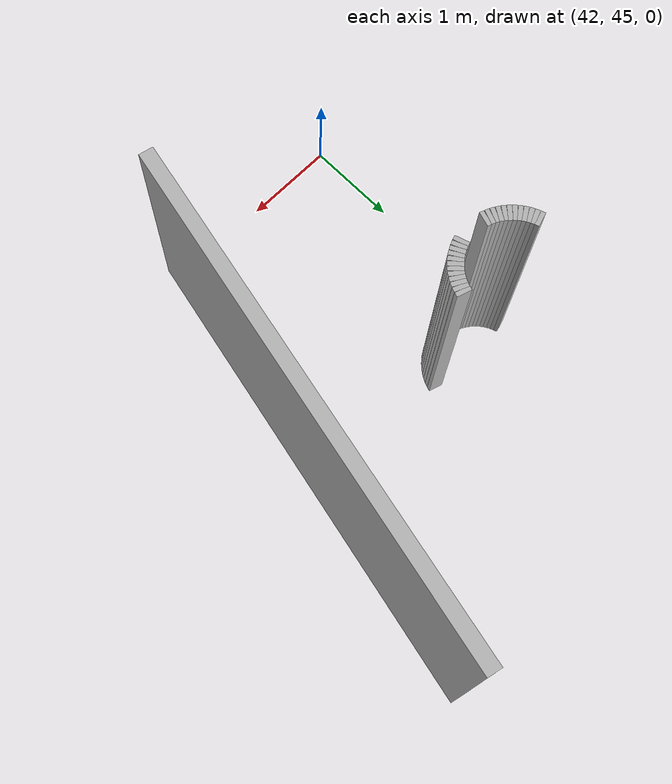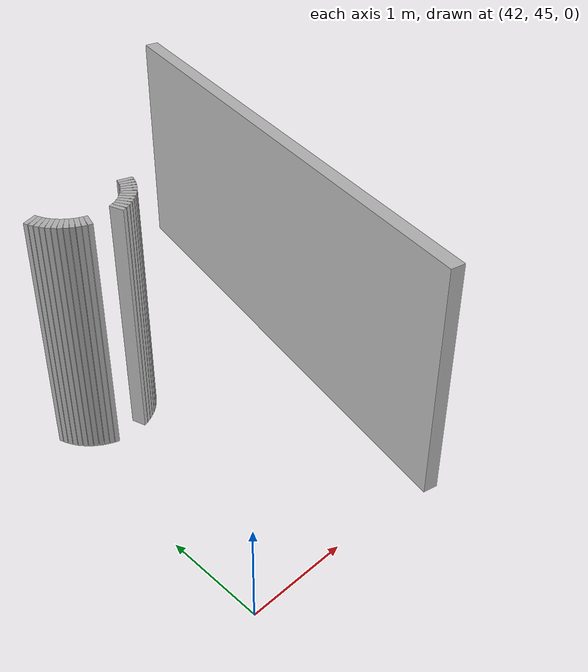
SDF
<sdf version="1.6">
 <model name="sps_2603">
  <static>1</static>
  <allow_auto_disable>0</allow_auto_disable>
  <link name="Wall710">
   <collision name="collision"><geometry><box><size>0.0453057 0.15 2.5</size></box></geometry></collision>
   <visual name="visual">
    <geometry><box><size>0.0453057 0.15 2.5</size></box></geometry>
    <transparency>0.0</transparency>
   </visual>
   <pose>43.0845 47.7989 1.25 0 0 -1.87593</pose>
  </link>
  <link name="Wall711">
   <collision name="collision"><geometry><box><size>0.0454525 0.15 2.5</size></box></geometry></collision>
   <visual name="visual">
    <geometry><box><size>0.0454525 0.15 2.5</size></box></geometry>
    <transparency>0.0</transparency>
   </visual>
   <pose>43.069 47.7563 1.25 0 0 -1.96352</pose>
  </link>
  <link name="Wall712">
   <collision name="collision"><geometry><box><size>0.0453724 0.15 2.5</size></box></geometry></collision>
   <visual name="visual">
    <geometry><box><size>0.0453724 0.15 2.5</size></box></geometry>
    <transparency>0.0</transparency>
   </visual>
   <pose>43.0498 47.7152 1.25 0 0 -2.05189</pose>
  </link>
  <link name="Wall713">
   <collision name="collision"><geometry><box><size>0.045342 0.15 2.5</size></box></geometry></collision>
   <visual name="visual">
    <geometry><box><size>0.045342 0.15 2.5</size></box></geometry>
    <transparency>0.0</transparency>
   </visual>
   <pose>43.0271 47.676 1.25 0 0 -2.13938</pose>
  </link>
  <link name="Wall714">
   <collision name="collision"><geometry><box><size>0.0453637 0.15 2.5</size></box></geometry></collision>
   <visual name="visual">
    <geometry><box><size>0.0453637 0.15 2.5</size></box></geometry>
    <transparency>0.0</transparency>
   </visual>
   <pose>43.0011 47.6389 1.25 0 0 -2.22452</pose>
  </link>
  <link name="Wall715">
   <collision name="collision"><geometry><box><size>0.0453148 0.15 2.5</size></box></geometry></collision>
   <visual name="visual">
    <geometry><box><size>0.0453148 0.15 2.5</size></box></geometry>
    <transparency>0.0</transparency>
   </visual>
   <pose>42.9719 47.6042 1.25 0 0 -2.31332</pose>
  </link>
  <link name="Wall716">
   <collision name="collision"><geometry><box><size>0.0453974 0.15 2.5</size></box></geometry></collision>
   <visual name="visual">
    <geometry><box><size>0.0453974 0.15 2.5</size></box></geometry>
    <transparency>0.0</transparency>
   </visual>
   <pose>42.9399 47.5721 1.25 0 0 -2.39709</pose>
  </link>
  <link name="Wall717">
   <collision name="collision"><geometry><box><size>0.0454008 0.15 2.5</size></box></geometry></collision>
   <visual name="visual">
    <geometry><box><size>0.0454008 0.15 2.5</size></box></geometry>
    <transparency>0.0</transparency>
   </visual>
   <pose>42.9052 47.5429 1.25 0 0 -2.4868</pose>
  </link>
  <link name="Wall718">
   <collision name="collision"><geometry><box><size>0.0453659 0.15 2.5</size></box></geometry></collision>
   <visual name="visual">
    <geometry><box><size>0.0453659 0.15 2.5</size></box></geometry>
    <transparency>0.0</transparency>
   </visual>
   <pose>42.868 47.517 1.25 0 0 -2.57971</pose>
  </link>
  <link name="Wall719">
   <collision name="collision"><geometry><box><size>0.0453183 0.15 2.5</size></box></geometry></collision>
   <visual name="visual">
    <geometry><box><size>0.0453183 0.15 2.5</size></box></geometry>
    <transparency>0.0</transparency>
   </visual>
   <pose>42.8288 47.4944 1.25 0 0 -2.65987</pose>
  </link>
  <link name="Wall720">
   <collision name="collision"><geometry><box><size>0.0454525 0.15 2.5</size></box></geometry></collision>
   <visual name="visual">
    <geometry><box><size>0.0454525 0.15 2.5</size></box></geometry>
    <transparency>0.0</transparency>
   </visual>
   <pose>42.7877 47.4752 1.25 0 0 -2.74887</pose>
  </link>
  <link name="Wall721">
   <collision name="collision"><geometry><box><size>0.0453057 0.15 2.5</size></box></geometry></collision>
   <visual name="visual">
    <geometry><box><size>0.0453057 0.15 2.5</size></box></geometry>
    <transparency>0.0</transparency>
   </visual>
   <pose>42.7451 47.4597 1.25 0 0 -2.83646</pose>
  </link>
  <link name="Wall728">
   <collision name="collision"><geometry><box><size>0.0453057 0.15 2.5</size></box></geometry></collision>
   <visual name="visual">
    <geometry><box><size>0.0453057 0.15 2.5</size></box></geometry>
    <transparency>0.0</transparency>
   </visual>
   <pose>42.4326 47.4599 1.25 0 -0 2.83646</pose>
  </link>
  <link name="Wall729">
   <collision name="collision"><geometry><box><size>0.0454525 0.15 2.5</size></box></geometry></collision>
   <visual name="visual">
    <geometry><box><size>0.0454525 0.15 2.5</size></box></geometry>
    <transparency>0.0</transparency>
   </visual>
   <pose>42.39 47.4754 1.25 0 -0 2.74887</pose>
  </link>
  <link name="Wall730">
   <collision name="collision"><geometry><box><size>0.0452338 0.15 2.5</size></box></geometry></collision>
   <visual name="visual">
    <geometry><box><size>0.0452338 0.15 2.5</size></box></geometry>
    <transparency>0.0</transparency>
   </visual>
   <pose>42.349 47.4945 1.25 0 -0 2.66346</pose>
  </link>
  <link name="Wall731">
   <collision name="collision"><geometry><box><size>0.045342 0.15 2.5</size></box></geometry></collision>
   <visual name="visual">
    <geometry><box><size>0.045342 0.15 2.5</size></box></geometry>
    <transparency>0.0</transparency>
   </visual>
   <pose>42.3098 47.5171 1.25 0 -0 2.57301</pose>
  </link>
  <link name="Wall732">
   <collision name="collision"><geometry><box><size>0.0454753 0.15 2.5</size></box></geometry></collision>
   <visual name="visual">
    <geometry><box><size>0.0454753 0.15 2.5</size></box></geometry>
    <transparency>0.0</transparency>
   </visual>
   <pose>42.2727 47.5432 1.25 0 -0 2.48467</pose>
  </link>
  <link name="Wall733">
   <collision name="collision"><geometry><box><size>0.0453148 0.15 2.5</size></box></geometry></collision>
   <visual name="visual">
    <geometry><box><size>0.0453148 0.15 2.5</size></box></geometry>
    <transparency>0.0</transparency>
   </visual>
   <pose>42.238 47.5724 1.25 0 -0 2.39907</pose>
  </link>
  <link name="Wall734">
   <collision name="collision"><geometry><box><size>0.0453148 0.15 2.5</size></box></geometry></collision>
   <visual name="visual">
    <geometry><box><size>0.0453148 0.15 2.5</size></box></geometry>
    <transparency>0.0</transparency>
   </visual>
   <pose>42.206 47.6044 1.25 0 -0 2.31332</pose>
  </link>
  <link name="Wall735">
   <collision name="collision"><geometry><box><size>0.0453637 0.15 2.5</size></box></geometry></collision>
   <visual name="visual">
    <geometry><box><size>0.0453637 0.15 2.5</size></box></geometry>
    <transparency>0.0</transparency>
   </visual>
   <pose>42.1768 47.6391 1.25 0 -0 2.22452</pose>
  </link>
  <link name="Wall736">
   <collision name="collision"><geometry><box><size>0.0452906 0.15 2.5</size></box></geometry></collision>
   <visual name="visual">
    <geometry><box><size>0.0452906 0.15 2.5</size></box></geometry>
    <transparency>0.0</transparency>
   </visual>
   <pose>42.1508 47.6762 1.25 0 -0 2.14011</pose>
  </link>
  <link name="Wall737">
   <collision name="collision"><geometry><box><size>0.0455348 0.15 2.5</size></box></geometry></collision>
   <visual name="visual">
    <geometry><box><size>0.0455348 0.15 2.5</size></box></geometry>
    <transparency>0.0</transparency>
   </visual>
   <pose>42.1281 47.7155 1.25 0 -0 2.05003</pose>
  </link>
  <link name="Wall738">
   <collision name="collision"><geometry><box><size>0.0452834 0.15 2.5</size></box></geometry></collision>
   <visual name="visual">
    <geometry><box><size>0.0452834 0.15 2.5</size></box></geometry>
    <transparency>0.0</transparency>
   </visual>
   <pose>42.1089 47.7566 1.25 0 -0 1.96507</pose>
  </link>
  <link name="Wall739">
   <collision name="collision"><geometry><box><size>0.0454804 0.15 2.5</size></box></geometry></collision>
   <visual name="visual">
    <geometry><box><size>0.0454804 0.15 2.5</size></box></geometry>
    <transparency>0.0</transparency>
   </visual>
   <pose>42.0934 47.7992 1.25 0 -0 1.87472</pose>
  </link>
  <link name="Wall980">
   <collision name="collision"><geometry><box><size>5.43506 0.15 2.5</size></box></geometry></collision>
   <visual name="visual">
    <geometry><box><size>5.43506 0.15 2.5</size></box></geometry>
    <transparency>0.0</transparency>
   </visual>
   <pose>44.6872 47.5127 1.25 0 0 -1.78505</pose>
  </link>
 </model>
</sdf>
